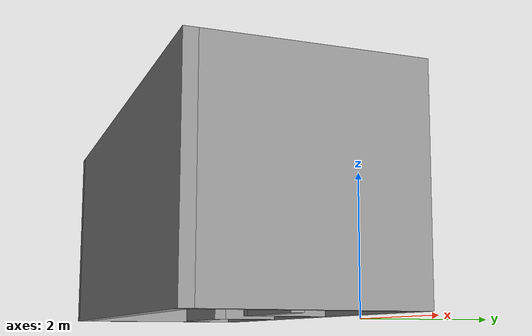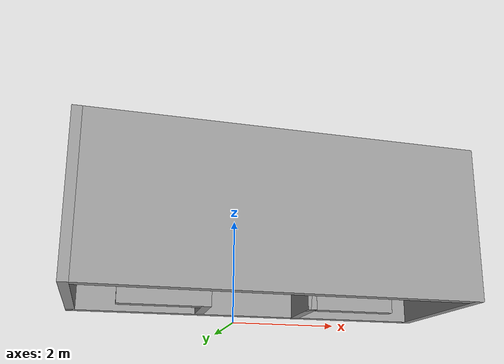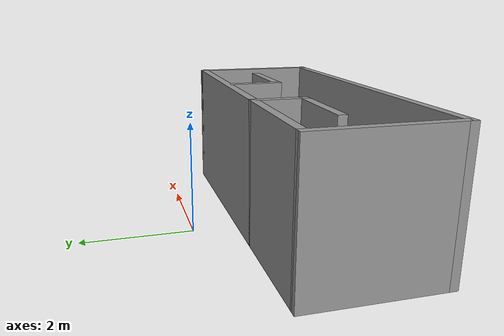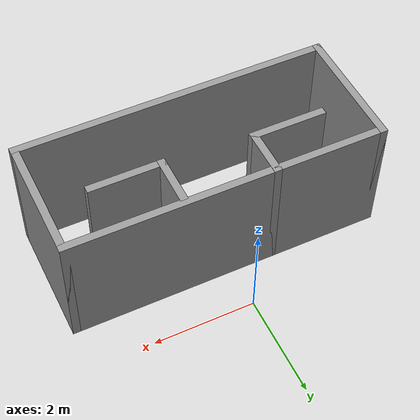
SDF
<?xml version='1.0'?>
<sdf version='1.7'>
  <model name='car'>
    <pose>0.12 -1.6575 0 0 -0 0</pose>
    <link name='Wall_0'>
      <collision name='Wall_0_Collision'>
        <geometry>
          <box>
            <size>2.5 0.15 2.5</size>
          </box>
        </geometry>
        <pose>0 0 1.25 0 -0 0</pose>
      </collision>
      <visual name='Wall_0_Visual'>
        <pose>0 0 1.25 0 -0 0</pose>
        <geometry>
          <box>
            <size>2.5 0.15 2.5</size>
          </box>
        </geometry>
        <material>
          <script>
            <uri>file://media/materials/scripts/gazebo.material</uri>
            <name>Gazebo/Grey</name>
          </script>
          <ambient>1 1 1 1</ambient>
        </material>
        <meta>
          <layer>0</layer>
        </meta>
      </visual>
      <pose>-3.05 -0.4075 0 0 -0 1.5708</pose>
    </link>
    <link name='Wall_1'>
      <collision name='Wall_1_Collision'>
        <geometry>
          <box>
            <size>6.25 0.15 2.5</size>
          </box>
        </geometry>
        <pose>0 0 1.25 0 -0 0</pose>
      </collision>
      <visual name='Wall_1_Visual'>
        <pose>0 0 1.25 0 -0 0</pose>
        <geometry>
          <box>
            <size>6.25 0.15 2.5</size>
          </box>
        </geometry>
        <material>
          <script>
            <uri>file://media/materials/scripts/gazebo.material</uri>
            <name>Gazebo/Grey</name>
          </script>
          <ambient>1 1 1 1</ambient>
        </material>
        <meta>
          <layer>0</layer>
        </meta>
      </visual>
      <pose>-0 0.7675 0 0 -0 0</pose>
    </link>
    <link name='Wall_2'>
      <collision name='Wall_2_Collision'>
        <geometry>
          <box>
            <size>2.5 0.15 2.5</size>
          </box>
        </geometry>
        <pose>0 0 1.25 0 -0 0</pose>
      </collision>
      <visual name='Wall_2_Visual'>
        <pose>0 0 1.25 0 -0 0</pose>
        <geometry>
          <box>
            <size>2.5 0.15 2.5</size>
          </box>
        </geometry>
        <material>
          <script>
            <uri>file://media/materials/scripts/gazebo.material</uri>
            <name>Gazebo/Grey</name>
          </script>
          <ambient>1 1 1 1</ambient>
        </material>
        <meta>
          <layer>0</layer>
        </meta>
      </visual>
      <pose>3.05 -0.4075 0 0 -0 -1.5708</pose>
    </link>
    <link name='Wall_3'>
      <collision name='Wall_3_Collision'>
        <geometry>
          <box>
            <size>6.25 0.15 2.5</size>
          </box>
        </geometry>
        <pose>0 0 1.25 0 -0 0</pose>
      </collision>
      <visual name='Wall_3_Visual'>
        <pose>0 0 1.25 0 -0 0</pose>
        <geometry>
          <box>
            <size>6.25 0.15 2.5</size>
          </box>
        </geometry>
        <material>
          <script>
            <uri>file://media/materials/scripts/gazebo.material</uri>
            <name>Gazebo/Grey</name>
          </script>
          <ambient>1 1 1 1</ambient>
        </material>
        <meta>
          <layer>0</layer>
        </meta>
      </visual>
      <pose>-0 -1.5825 0 0 -0 3.14159</pose>
    </link>
    <link name='Wall_5'>
      <collision name='Wall_5_Collision'>
        <geometry>
          <box>
            <size>1 0.15 2.5</size>
          </box>
        </geometry>
        <pose>0 0 1.25 0 -0 0</pose>
      </collision>
      <visual name='Wall_5_Visual'>
        <pose>0 0 1.25 0 -0 0</pose>
        <geometry>
          <box>
            <size>1 0.15 2.5</size>
          </box>
        </geometry>
        <material>
          <script>
            <uri>file://media/materials/scripts/gazebo.material</uri>
            <name>Gazebo/Grey</name>
          </script>
          <ambient>1 1 1 1</ambient>
        </material>
        <meta>
          <layer>0</layer>
        </meta>
      </visual>
      <pose>-0.92 0.3425 0 0 -0 -1.5708</pose>
    </link>
    <link name='Wall_6'>
      <collision name='Wall_6_Collision'>
        <geometry>
          <box>
            <size>1.5 0.15 2.5</size>
          </box>
        </geometry>
        <pose>0 0 1.25 0 -0 0</pose>
      </collision>
      <visual name='Wall_6_Visual'>
        <pose>0 0 1.25 0 -0 0</pose>
        <geometry>
          <box>
            <size>1.5 0.15 2.5</size>
          </box>
        </geometry>
        <material>
          <script>
            <uri>file://media/materials/scripts/gazebo.material</uri>
            <name>Gazebo/Grey</name>
          </script>
          <ambient>1 1 1 1</ambient>
        </material>
        <meta>
          <layer>0</layer>
        </meta>
      </visual>
      <pose>-1.595 -0.0825 0 0 -0 3.14159</pose>
    </link>
    <link name='Wall_8'>
      <collision name='Wall_8_Collision'>
        <geometry>
          <box>
            <size>1 0.15 2.5</size>
          </box>
        </geometry>
        <pose>0 0 1.25 0 -0 0</pose>
      </collision>
      <visual name='Wall_8_Visual'>
        <pose>0 0 1.25 0 -0 0</pose>
        <geometry>
          <box>
            <size>1 0.15 2.5</size>
          </box>
        </geometry>
        <material>
          <script>
            <uri>file://media/materials/scripts/gazebo.material</uri>
            <name>Gazebo/Grey</name>
          </script>
          <ambient>1 1 1 1</ambient>
        </material>
        <meta>
          <layer>0</layer>
        </meta>
      </visual>
      <pose>0.82 0.2225 0 0 -0 -1.5708</pose>
    </link>
    <link name='Wall_9'>
      <collision name='Wall_9_Collision'>
        <geometry>
          <box>
            <size>1.5 0.15 2.5</size>
          </box>
        </geometry>
        <pose>0 0 1.25 0 -0 0</pose>
      </collision>
      <visual name='Wall_9_Visual'>
        <pose>0 0 1.25 0 -0 0</pose>
        <geometry>
          <box>
            <size>1.5 0.15 2.5</size>
          </box>
        </geometry>
        <material>
          <script>
            <uri>file://media/materials/scripts/gazebo.material</uri>
            <name>Gazebo/Grey</name>
          </script>
          <ambient>1 1 1 1</ambient>
        </material>
        <meta>
          <layer>0</layer>
        </meta>
      </visual>
      <pose>1.495 -0.2025 0 0 -0 0</pose>
    </link>
    <static>1</static>
  </model>
</sdf>
